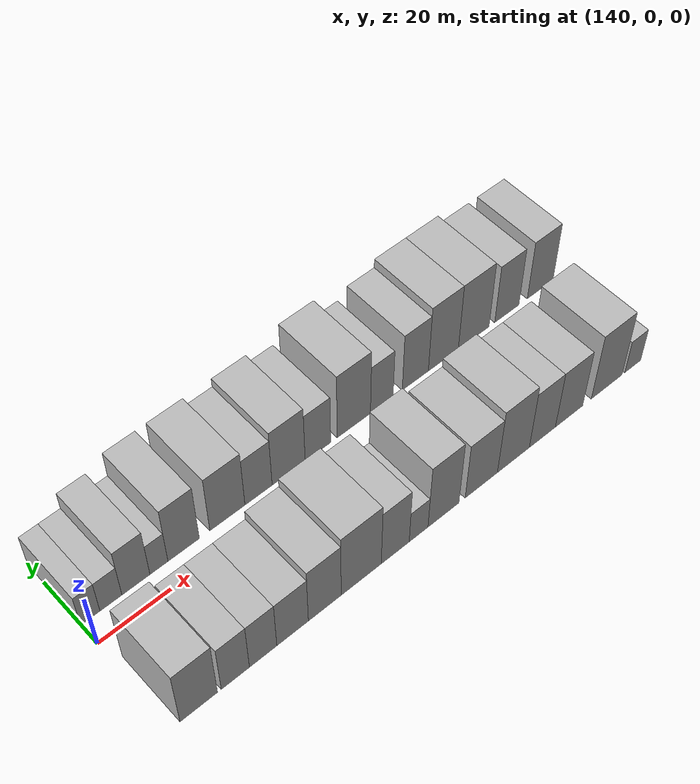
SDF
<sdf version="1.6">
 <world name="default">
  <model name="building_15">
   <static>1</static>
   <pose>142.4899 16.0000 0 0.000000 0.000000 1.570796</pose>
   <link name="link">
    <pose>0 0 6.00 0 0 0</pose>
    <collision name="collision"><geometry><box><size>20.0000 5.1876 12.0000</size></box></geometry></collision>
    <visual name="visual">
     <cast_shadows>0</cast_shadows>
     <geometry><box><size>20.0000 5.1876 12.0000</size></box></geometry>
     <material>
      <script>
       <uri>model://HANNAS_wall/materials/scripts</uri>
       <uri>model://HANNAS_wall/materials/textures</uri>
       <name>vrc/HANNAS_wall</name>
      </script>
     </material>
    </visual>
   </link>
  </model>
  <model name="building_16">
   <static>1</static>
   <pose>148.0569 16.0000 0 0.000000 0.000000 1.570796</pose>
   <link name="link">
    <pose>0 0 6.00 0 0 0</pose>
    <collision name="collision"><geometry><box><size>20.0000 5.9464 12.0000</size></box></geometry></collision>
    <visual name="visual">
     <cast_shadows>0</cast_shadows>
     <geometry><box><size>20.0000 5.9464 12.0000</size></box></geometry>
     <material>
      <script>
       <uri>model://HANNAS_wall/materials/scripts</uri>
       <uri>model://HANNAS_wall/materials/textures</uri>
       <name>vrc/HANNAS_wall</name>
      </script>
     </material>
    </visual>
   </link>
  </model>
  <model name="building_17">
   <static>1</static>
   <pose>154.8859 16.0000 0 0.000000 0.000000 1.570796</pose>
   <link name="link">
    <pose>0 0 9.00 0 0 0</pose>
    <collision name="collision"><geometry><box><size>20.0000 7.7115 18.0000</size></box></geometry></collision>
    <visual name="visual">
     <cast_shadows>0</cast_shadows>
     <geometry><box><size>20.0000 7.7115 18.0000</size></box></geometry>
     <material>
      <script>
       <uri>model://HANNAS_wall/materials/scripts</uri>
       <uri>model://HANNAS_wall/materials/textures</uri>
       <name>vrc/HANNAS_wall</name>
      </script>
     </material>
    </visual>
   </link>
  </model>
  <model name="building_18">
   <static>1</static>
   <pose>161.2550 16.0000 0 0.000000 0.000000 1.570796</pose>
   <link name="link">
    <pose>0 0 6.00 0 0 0</pose>
    <collision name="collision"><geometry><box><size>20.0000 5.0269 12.0000</size></box></geometry></collision>
    <visual name="visual">
     <cast_shadows>0</cast_shadows>
     <geometry><box><size>20.0000 5.0269 12.0000</size></box></geometry>
     <material>
      <script>
       <uri>model://HANNAS_wall/materials/scripts</uri>
       <uri>model://HANNAS_wall/materials/textures</uri>
       <name>vrc/HANNAS_wall</name>
      </script>
     </material>
    </visual>
   </link>
  </model>
  <model name="building_19">
   <static>1</static>
   <pose>168.2138 16.0000 0 0.000000 0.000000 1.570796</pose>
   <link name="link">
    <pose>0 0 10.50 0 0 0</pose>
    <collision name="collision"><geometry><box><size>20.0000 8.8906 21.0000</size></box></geometry></collision>
    <visual name="visual">
     <cast_shadows>0</cast_shadows>
     <geometry><box><size>20.0000 8.8906 21.0000</size></box></geometry>
     <material>
      <script>
       <uri>model://HANNAS_wall/materials/scripts</uri>
       <uri>model://HANNAS_wall/materials/textures</uri>
       <name>vrc/HANNAS_wall</name>
      </script>
     </material>
    </visual>
   </link>
  </model>
  <model name="building_20">
   <static>1</static>
   <pose>180.7869 16.0000 0 0.000000 0.000000 1.570796</pose>
   <link name="link">
    <pose>0 0 10.50 0 0 0</pose>
    <collision name="collision"><geometry><box><size>20.0000 10.2557 21.0000</size></box></geometry></collision>
    <visual name="visual">
     <cast_shadows>0</cast_shadows>
     <geometry><box><size>20.0000 10.2557 21.0000</size></box></geometry>
     <material>
      <script>
       <uri>model://HANNAS_wall/materials/scripts</uri>
       <uri>model://HANNAS_wall/materials/textures</uri>
       <name>vrc/HANNAS_wall</name>
      </script>
     </material>
    </visual>
   </link>
  </model>
  <model name="building_21">
   <static>1</static>
   <pose>189.9630 16.0000 0 0.000000 0.000000 1.570796</pose>
   <link name="link">
    <pose>0 0 9.00 0 0 0</pose>
    <collision name="collision"><geometry><box><size>20.0000 8.0965 18.0000</size></box></geometry></collision>
    <visual name="visual">
     <cast_shadows>0</cast_shadows>
     <geometry><box><size>20.0000 8.0965 18.0000</size></box></geometry>
     <material>
      <script>
       <uri>model://HANNAS_wall/materials/scripts</uri>
       <uri>model://HANNAS_wall/materials/textures</uri>
       <name>vrc/HANNAS_wall</name>
      </script>
     </material>
    </visual>
   </link>
  </model>
  <model name="building_22">
   <static>1</static>
   <pose>199.0164 16.0000 0 0.000000 0.000000 1.570796</pose>
   <link name="link">
    <pose>0 0 10.50 0 0 0</pose>
    <collision name="collision"><geometry><box><size>20.0000 10.0103 21.0000</size></box></geometry></collision>
    <visual name="visual">
     <cast_shadows>0</cast_shadows>
     <geometry><box><size>20.0000 10.0103 21.0000</size></box></geometry>
     <material>
      <script>
       <uri>model://HANNAS_wall/materials/scripts</uri>
       <uri>model://HANNAS_wall/materials/textures</uri>
       <name>vrc/HANNAS_wall</name>
      </script>
     </material>
    </visual>
   </link>
  </model>
  <model name="building_23">
   <static>1</static>
   <pose>207.9740 16.0000 0 0.000000 0.000000 1.570796</pose>
   <link name="link">
    <pose>0 0 9.00 0 0 0</pose>
    <collision name="collision"><geometry><box><size>20.0000 7.9049 18.0000</size></box></geometry></collision>
    <visual name="visual">
     <cast_shadows>0</cast_shadows>
     <geometry><box><size>20.0000 7.9049 18.0000</size></box></geometry>
     <material>
      <script>
       <uri>model://HANNAS_wall/materials/scripts</uri>
       <uri>model://HANNAS_wall/materials/textures</uri>
       <name>vrc/HANNAS_wall</name>
      </script>
     </material>
    </visual>
   </link>
  </model>
  <model name="building_24">
   <static>1</static>
   <pose>219.2132 16.0000 0 0.000000 0.000000 1.570796</pose>
   <link name="link">
    <pose>0 0 12.00 0 0 0</pose>
    <collision name="collision"><geometry><box><size>20.0000 10.5735 24.0000</size></box></geometry></collision>
    <visual name="visual">
     <cast_shadows>0</cast_shadows>
     <geometry><box><size>20.0000 10.5735 24.0000</size></box></geometry>
     <material>
      <script>
       <uri>model://HANNAS_wall/materials/scripts</uri>
       <uri>model://HANNAS_wall/materials/textures</uri>
       <name>vrc/HANNAS_wall</name>
      </script>
     </material>
    </visual>
   </link>
  </model>
  <model name="building_25">
   <static>1</static>
   <pose>228.1568 16.0000 0 0.000000 0.000000 1.570796</pose>
   <link name="link">
    <pose>0 0 9.00 0 0 0</pose>
    <collision name="collision"><geometry><box><size>20.0000 7.3136 18.0000</size></box></geometry></collision>
    <visual name="visual">
     <cast_shadows>0</cast_shadows>
     <geometry><box><size>20.0000 7.3136 18.0000</size></box></geometry>
     <material>
      <script>
       <uri>model://HANNAS_wall/materials/scripts</uri>
       <uri>model://HANNAS_wall/materials/textures</uri>
       <name>vrc/HANNAS_wall</name>
      </script>
     </material>
    </visual>
   </link>
  </model>
  <model name="building_26">
   <static>1</static>
   <pose>239.1227 16.0000 0 0.000000 0.000000 1.570796</pose>
   <link name="link">
    <pose>0 0 10.50 0 0 0</pose>
    <collision name="collision"><geometry><box><size>20.0000 8.6183 21.0000</size></box></geometry></collision>
    <visual name="visual">
     <cast_shadows>0</cast_shadows>
     <geometry><box><size>20.0000 8.6183 21.0000</size></box></geometry>
     <material>
      <script>
       <uri>model://HANNAS_wall/materials/scripts</uri>
       <uri>model://HANNAS_wall/materials/textures</uri>
       <name>vrc/HANNAS_wall</name>
      </script>
     </material>
    </visual>
   </link>
  </model>
  <model name="building_27">
   <static>1</static>
   <pose>248.4879 16.0000 0 0.000000 0.000000 1.570796</pose>
   <link name="link">
    <pose>0 0 12.00 0 0 0</pose>
    <collision name="collision"><geometry><box><size>20.0000 10.1120 24.0000</size></box></geometry></collision>
    <visual name="visual">
     <cast_shadows>0</cast_shadows>
     <geometry><box><size>20.0000 10.1120 24.0000</size></box></geometry>
     <material>
      <script>
       <uri>model://HANNAS_wall/materials/scripts</uri>
       <uri>model://HANNAS_wall/materials/textures</uri>
       <name>vrc/HANNAS_wall</name>
      </script>
     </material>
    </visual>
   </link>
  </model>
  <model name="building_28">
   <static>1</static>
   <pose>258.8197 16.0000 0 0.000000 0.000000 1.570796</pose>
   <link name="link">
    <pose>0 0 12.00 0 0 0</pose>
    <collision name="collision"><geometry><box><size>20.0000 10.5517 24.0000</size></box></geometry></collision>
    <visual name="visual">
     <cast_shadows>0</cast_shadows>
     <geometry><box><size>20.0000 10.5517 24.0000</size></box></geometry>
     <material>
      <script>
       <uri>model://HANNAS_wall/materials/scripts</uri>
       <uri>model://HANNAS_wall/materials/textures</uri>
       <name>vrc/HANNAS_wall</name>
      </script>
     </material>
    </visual>
   </link>
  </model>
  <model name="building_29">
   <static>1</static>
   <pose>270.3562 16.0000 0 0.000000 0.000000 1.570796</pose>
   <link name="link">
    <pose>0 0 10.50 0 0 0</pose>
    <collision name="collision"><geometry><box><size>20.0000 8.5213 21.0000</size></box></geometry></collision>
    <visual name="visual">
     <cast_shadows>0</cast_shadows>
     <geometry><box><size>20.0000 8.5213 21.0000</size></box></geometry>
     <material>
      <script>
       <uri>model://HANNAS_wall/materials/scripts</uri>
       <uri>model://HANNAS_wall/materials/textures</uri>
       <name>vrc/HANNAS_wall</name>
      </script>
     </material>
    </visual>
   </link>
  </model>
  <model name="building_30">
   <static>1</static>
   <pose>282.2523 16.0000 0 0.000000 0.000000 1.570796</pose>
   <link name="link">
    <pose>0 0 10.50 0 0 0</pose>
    <collision name="collision"><geometry><box><size>20.0000 9.2708 21.0000</size></box></geometry></collision>
    <visual name="visual">
     <cast_shadows>0</cast_shadows>
     <geometry><box><size>20.0000 9.2708 21.0000</size></box></geometry>
     <material>
      <script>
       <uri>model://HANNAS_wall/materials/scripts</uri>
       <uri>model://HANNAS_wall/materials/textures</uri>
       <name>vrc/HANNAS_wall</name>
      </script>
     </material>
    </visual>
   </link>
  </model>
  <model name="building_45">
   <static>1</static>
   <pose>147.2259 -16.0000 0 0.000000 0.000000 1.570796</pose>
   <link name="link">
    <pose>0 0 10.50 0 0 0</pose>
    <collision name="collision"><geometry><box><size>20.0000 10.0165 21.0000</size></box></geometry></collision>
    <visual name="visual">
     <cast_shadows>0</cast_shadows>
     <geometry><box><size>20.0000 10.0165 21.0000</size></box></geometry>
     <material>
      <script>
       <uri>model://HANNAS_wall/materials/scripts</uri>
       <uri>model://HANNAS_wall/materials/textures</uri>
       <name>vrc/HANNAS_wall</name>
      </script>
     </material>
    </visual>
   </link>
  </model>
  <model name="building_46">
   <static>1</static>
   <pose>157.0768 -16.0000 0 0.000000 0.000000 1.570796</pose>
   <link name="link">
    <pose>0 0 9.00 0 0 0</pose>
    <collision name="collision"><geometry><box><size>20.0000 7.6852 18.0000</size></box></geometry></collision>
    <visual name="visual">
     <cast_shadows>0</cast_shadows>
     <geometry><box><size>20.0000 7.6852 18.0000</size></box></geometry>
     <material>
      <script>
       <uri>model://HANNAS_wall/materials/scripts</uri>
       <uri>model://HANNAS_wall/materials/textures</uri>
       <name>vrc/HANNAS_wall</name>
      </script>
     </material>
    </visual>
   </link>
  </model>
  <model name="building_47">
   <static>1</static>
   <pose>164.7300 -16.0000 0 0.000000 0.000000 1.570796</pose>
   <link name="link">
    <pose>0 0 9.00 0 0 0</pose>
    <collision name="collision"><geometry><box><size>20.0000 7.6213 18.0000</size></box></geometry></collision>
    <visual name="visual">
     <cast_shadows>0</cast_shadows>
     <geometry><box><size>20.0000 7.6213 18.0000</size></box></geometry>
     <material>
      <script>
       <uri>model://HANNAS_wall/materials/scripts</uri>
       <uri>model://HANNAS_wall/materials/textures</uri>
       <name>vrc/HANNAS_wall</name>
      </script>
     </material>
    </visual>
   </link>
  </model>
  <model name="building_48">
   <static>1</static>
   <pose>173.0088 -16.0000 0 0.000000 0.000000 1.570796</pose>
   <link name="link">
    <pose>0 0 9.00 0 0 0</pose>
    <collision name="collision"><geometry><box><size>20.0000 8.9361 18.0000</size></box></geometry></collision>
    <visual name="visual">
     <cast_shadows>0</cast_shadows>
     <geometry><box><size>20.0000 8.9361 18.0000</size></box></geometry>
     <material>
      <script>
       <uri>model://HANNAS_wall/materials/scripts</uri>
       <uri>model://HANNAS_wall/materials/textures</uri>
       <name>vrc/HANNAS_wall</name>
      </script>
     </material>
    </visual>
   </link>
  </model>
  <model name="building_49">
   <static>1</static>
   <pose>182.2193 -16.0000 0 0.000000 0.000000 1.570796</pose>
   <link name="link">
    <pose>0 0 10.50 0 0 0</pose>
    <collision name="collision"><geometry><box><size>20.0000 9.4849 21.0000</size></box></geometry></collision>
    <visual name="visual">
     <cast_shadows>0</cast_shadows>
     <geometry><box><size>20.0000 9.4849 21.0000</size></box></geometry>
     <material>
      <script>
       <uri>model://HANNAS_wall/materials/scripts</uri>
       <uri>model://HANNAS_wall/materials/textures</uri>
       <name>vrc/HANNAS_wall</name>
      </script>
     </material>
    </visual>
   </link>
  </model>
  <model name="building_50">
   <static>1</static>
   <pose>192.9037 -16.0000 0 0.000000 0.000000 1.570796</pose>
   <link name="link">
    <pose>0 0 12.00 0 0 0</pose>
    <collision name="collision"><geometry><box><size>20.0000 11.8839 24.0000</size></box></geometry></collision>
    <visual name="visual">
     <cast_shadows>0</cast_shadows>
     <geometry><box><size>20.0000 11.8839 24.0000</size></box></geometry>
     <material>
      <script>
       <uri>model://HANNAS_wall/materials/scripts</uri>
       <uri>model://HANNAS_wall/materials/textures</uri>
       <name>vrc/HANNAS_wall</name>
      </script>
     </material>
    </visual>
   </link>
  </model>
  <model name="building_51">
   <static>1</static>
   <pose>203.0953 -16.0000 0 0.000000 0.000000 1.570796</pose>
   <link name="link">
    <pose>0 0 10.50 0 0 0</pose>
    <collision name="collision"><geometry><box><size>20.0000 8.4993 21.0000</size></box></geometry></collision>
    <visual name="visual">
     <cast_shadows>0</cast_shadows>
     <geometry><box><size>20.0000 8.4993 21.0000</size></box></geometry>
     <material>
      <script>
       <uri>model://HANNAS_wall/materials/scripts</uri>
       <uri>model://HANNAS_wall/materials/textures</uri>
       <name>vrc/HANNAS_wall</name>
      </script>
     </material>
    </visual>
   </link>
  </model>
  <model name="building_52">
   <static>1</static>
   <pose>210.2401 -16.0000 0 0.000000 0.000000 1.570796</pose>
   <link name="link">
    <pose>0 0 6.00 0 0 0</pose>
    <collision name="collision"><geometry><box><size>20.0000 5.7902 12.0000</size></box></geometry></collision>
    <visual name="visual">
     <cast_shadows>0</cast_shadows>
     <geometry><box><size>20.0000 5.7902 12.0000</size></box></geometry>
     <material>
      <script>
       <uri>model://HANNAS_wall/materials/scripts</uri>
       <uri>model://HANNAS_wall/materials/textures</uri>
       <name>vrc/HANNAS_wall</name>
      </script>
     </material>
    </visual>
   </link>
  </model>
  <model name="building_53">
   <static>1</static>
   <pose>217.9878 -16.0000 0 0.000000 0.000000 1.570796</pose>
   <link name="link">
    <pose>0 0 12.00 0 0 0</pose>
    <collision name="collision"><geometry><box><size>20.0000 9.7052 24.0000</size></box></geometry></collision>
    <visual name="visual">
     <cast_shadows>0</cast_shadows>
     <geometry><box><size>20.0000 9.7052 24.0000</size></box></geometry>
     <material>
      <script>
       <uri>model://HANNAS_wall/materials/scripts</uri>
       <uri>model://HANNAS_wall/materials/textures</uri>
       <name>vrc/HANNAS_wall</name>
      </script>
     </material>
    </visual>
   </link>
  </model>
  <model name="building_54">
   <static>1</static>
   <pose>230.0299 -16.0000 0 0.000000 0.000000 1.570796</pose>
   <link name="link">
    <pose>0 0 10.50 0 0 0</pose>
    <collision name="collision"><geometry><box><size>20.0000 10.3791 21.0000</size></box></geometry></collision>
    <visual name="visual">
     <cast_shadows>0</cast_shadows>
     <geometry><box><size>20.0000 10.3791 21.0000</size></box></geometry>
     <material>
      <script>
       <uri>model://HANNAS_wall/materials/scripts</uri>
       <uri>model://HANNAS_wall/materials/textures</uri>
       <name>vrc/HANNAS_wall</name>
      </script>
     </material>
    </visual>
   </link>
  </model>
  <model name="building_55">
   <static>1</static>
   <pose>240.4846 -16.0000 0 0.000000 0.000000 1.570796</pose>
   <link name="link">
    <pose>0 0 12.00 0 0 0</pose>
    <collision name="collision"><geometry><box><size>20.0000 10.5303 24.0000</size></box></geometry></collision>
    <visual name="visual">
     <cast_shadows>0</cast_shadows>
     <geometry><box><size>20.0000 10.5303 24.0000</size></box></geometry>
     <material>
      <script>
       <uri>model://HANNAS_wall/materials/scripts</uri>
       <uri>model://HANNAS_wall/materials/textures</uri>
       <name>vrc/HANNAS_wall</name>
      </script>
     </material>
    </visual>
   </link>
  </model>
  <model name="building_56">
   <static>1</static>
   <pose>250.1376 -16.0000 0 0.000000 0.000000 1.570796</pose>
   <link name="link">
    <pose>0 0 10.50 0 0 0</pose>
    <collision name="collision"><geometry><box><size>20.0000 8.7756 21.0000</size></box></geometry></collision>
    <visual name="visual">
     <cast_shadows>0</cast_shadows>
     <geometry><box><size>20.0000 8.7756 21.0000</size></box></geometry>
     <material>
      <script>
       <uri>model://HANNAS_wall/materials/scripts</uri>
       <uri>model://HANNAS_wall/materials/textures</uri>
       <name>vrc/HANNAS_wall</name>
      </script>
     </material>
    </visual>
   </link>
  </model>
  <model name="building_57">
   <static>1</static>
   <pose>259.2182 -16.0000 0 0.000000 0.000000 1.570796</pose>
   <link name="link">
    <pose>0 0 10.50 0 0 0</pose>
    <collision name="collision"><geometry><box><size>20.0000 9.3856 21.0000</size></box></geometry></collision>
    <visual name="visual">
     <cast_shadows>0</cast_shadows>
     <geometry><box><size>20.0000 9.3856 21.0000</size></box></geometry>
     <material>
      <script>
       <uri>model://HANNAS_wall/materials/scripts</uri>
       <uri>model://HANNAS_wall/materials/textures</uri>
       <name>vrc/HANNAS_wall</name>
      </script>
     </material>
    </visual>
   </link>
  </model>
  <model name="building_58">
   <static>1</static>
   <pose>272.3187 -16.0000 0 0.000000 0.000000 1.570796</pose>
   <link name="link">
    <pose>0 0 12.00 0 0 0</pose>
    <collision name="collision"><geometry><box><size>20.0000 10.8154 24.0000</size></box></geometry></collision>
    <visual name="visual">
     <cast_shadows>0</cast_shadows>
     <geometry><box><size>20.0000 10.8154 24.0000</size></box></geometry>
     <material>
      <script>
       <uri>model://HANNAS_wall/materials/scripts</uri>
       <uri>model://HANNAS_wall/materials/textures</uri>
       <name>vrc/HANNAS_wall</name>
      </script>
     </material>
    </visual>
   </link>
  </model>
  <model name="building_59">
   <static>1</static>
   <pose>281.5912 -16.0000 0 0.000000 0.000000 1.570796</pose>
   <link name="link">
    <pose>0 0 6.00 0 0 0</pose>
    <collision name="collision"><geometry><box><size>20.0000 5.7297 12.0000</size></box></geometry></collision>
    <visual name="visual">
     <cast_shadows>0</cast_shadows>
     <geometry><box><size>20.0000 5.7297 12.0000</size></box></geometry>
     <material>
      <script>
       <uri>model://HANNAS_wall/materials/scripts</uri>
       <uri>model://HANNAS_wall/materials/textures</uri>
       <name>vrc/HANNAS_wall</name>
      </script>
     </material>
    </visual>
   </link>
  </model>
 </world>
</sdf>
